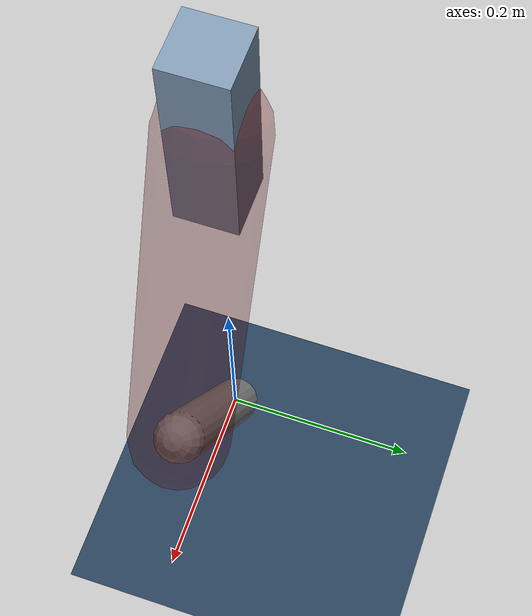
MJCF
<mujoco model="Hopper2D">
	<compiler inertiafromgeom="true" angle="radian" />
	<option timestep="0.001" integrator="implicit" cone="elliptic" solver="Newton" tolerance="1e-10" />

	<default>
		<geom contype="1" conaffinity="1" condim="3" friction="2 0.005 0.0001" solref="0.005 1" />
		<joint limited="true" damping="0.1" />
	</default>

	<asset>
		<texture name="skybox" type="skybox" builtin="gradient" rgb1=".4 .6 .8" rgb2="0 0 0" width="800" height="800" />
		<texture name="grid" type="2d" builtin="checker" rgb1=".1 .2 .3" rgb2=".2 .3 .4" width="300" height="300" mark="edge" markrgb=".2 .3 .4" />
		<material name="ground" texture="grid" texrepeat="1 1" texuniform="true" reflectance="0.1" />
		<material name="leg" rgba="0.5 0.6 0.7 1" />
	</asset>

	<worldbody>

		<geom name="floor" type="plane" size="5 5 0.25" material="ground" />

		<light directional="false" diffuse="0.8 0.8 0.8" specular="0.3 0.3 0.3" pos="0 0 2" dir="0 0 -1" />
		<light mode="targetbodycom" target="base" directional="false" diffuse="0.8 0.8 0.8" specular="0.3 0.3 0.3" pos="0 0 2" dir="0 0 -1" />

		<camera name="fixed" pos="0 -2 1" xyaxes="1 0 0 0 0 1" />
		<camera name="tracking" mode="trackcom" pos="0 -3 1" />

		<body name="root" pos="0 0 0.5243470150475948">
			<joint name="slide_x" type="slide" axis="1 0 0" range="-100 100" />
			<joint name="slide_z" type="slide" axis="0 0 1" range="0 10" />

			<body name="base" pos="0 0 0">
				<geom name="torso" type="box" size="0.03 0.03 0.1" mass="2.788" material="leg" />

				<body name="link1" pos="0 0 0" euler="0 1.1610856754217465 0">
					<joint type="hinge" axis="0 -1 0" pos="0 0 0" name="hinge1" limited="true" range="-3.14 3.14" stiffness="0" damping="0.1" />
					<geom name="thigh" type="capsule" fromto="0 0 0 0.3480098930852875 0 0" size="0.05" rgba="0.5 0 0 0.3" mass="1.1211277006388052" />

					<body name="link2" pos="0.3480098930852875 0 0" euler="0 1.0039902177908926 0">
						<joint type="hinge" axis="0 -1 0" pos="0 0 0" name="hinge2" limited="true" range="-3.14 3.14" stiffness="0" damping="0.1" />
						<geom name="shank" type="capsule" fromto="0 0 0 0.24758825927106315 0 0" size="0.025" mass="0.4405706074168505" />

					</body>
				</body>
			</body>
		</body>
	</worldbody>

	<actuator>
		<motor name="torque1" joint="hinge1" ctrlrange="-123.84162435167735 123.84162435167735" ctrllimited="true" gear="1" />
		<motor name="torque2" joint="hinge2" ctrlrange="-127.35996266774349 127.35996266774349" ctrllimited="true" gear="1" />
	</actuator>
</mujoco>
